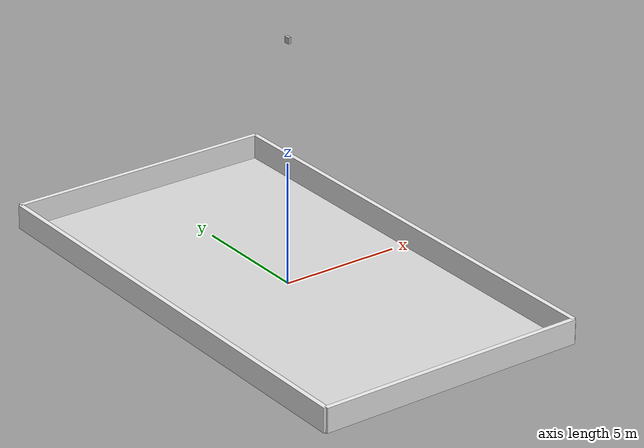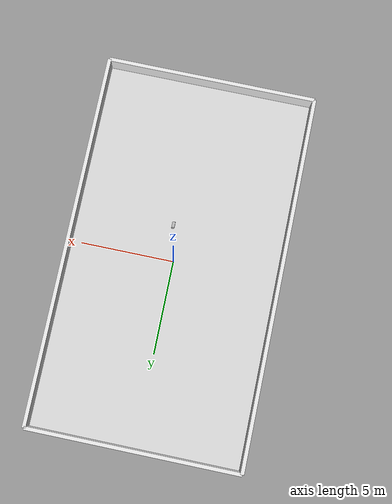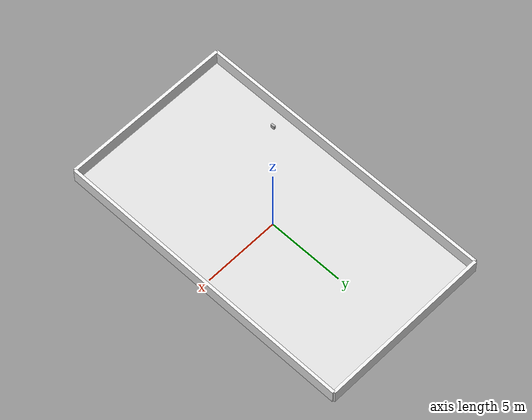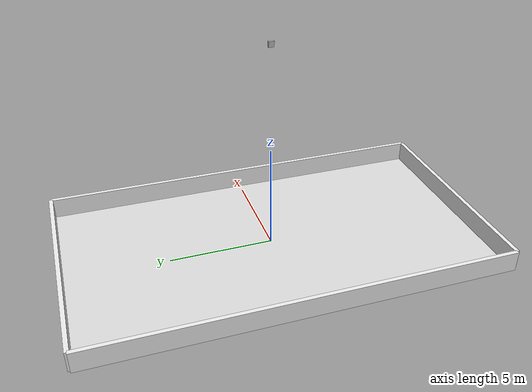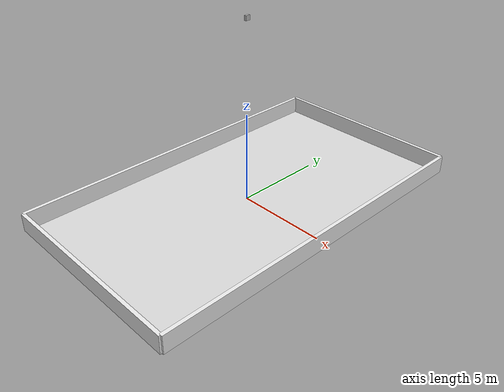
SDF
<sdf version="1.8">
 <world name="default">
  <physics type="ode">
   <real_time_update_rate>1000.0</real_time_update_rate>
   <max_step_size>0.001</max_step_size>
   <real_time_factor>1.0</real_time_factor>
   <ode>
    <solver>
     <type>quick</type>
     <iters>150</iters>
     <precon_iters>0</precon_iters>
     <sor>1.4</sor>
     <use_dynamic_moi_rescaling>1</use_dynamic_moi_rescaling>
    </solver>
    <constraints>
     <cfm>0.00001</cfm>
     <erp>0.2</erp>
     <contact_max_correcting_vel>100.0</contact_max_correcting_vel>
     <contact_surface_layer>0.001</contact_surface_layer>
    </constraints>
   </ode>
  </physics>
  <plugin filename="gz-sim-physics-system" name="gz::sim::systems::Physics"/>
  <plugin filename="gz-sim-user-commands-system" name="gz::sim::systems::UserCommands"/>
  <plugin filename="gz-sim-scene-broadcaster-system" name="gz::sim::systems::SceneBroadcaster"/>
  <plugin filename="gz-sim-sensors-system" name="gz::sim::systems::Sensors">
   <render_engine>ogre2</render_engine>
  </plugin>
  <plugin filename="gz-sim-imu-system" name="gz::sim::systems::Imu"/>
  <include><uri>https://fuel.gazebosim.org/1.0/OpenRobotics/models/Sun</uri></include>
  <include><uri>model://overhead_camera</uri></include>
  <include><uri>model://warehouse_world</uri></include>
 </world>
</sdf>

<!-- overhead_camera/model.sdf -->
<sdf version="1.8">
  <model name="overhead_camera">
    <static>true</static>
    <pose>0 0 10 0 1.57079632679 0</pose>

    <link name="camera_link">
      <sensor name="overhead_camera_sensor" type="camera">
        <always_on>true</always_on>
        <update_rate>30</update_rate>
        <visualize>true</visualize>

        <camera>
          <horizontal_fov>1.57</horizontal_fov>
          <image>
            <width>3840</width>
            <height>2160</height>
            <format>R8G8B8</format>
          </image>
          <clip>
            <near>0.1</near>
            <far>100</far>
          </clip>
        </camera>
      </sensor>

      <visual name="camera_box">
        <geometry>
          <box>
            <size>0.25 0.25 0.12</size>
          </box>
        </geometry>
      </visual>
    </link>
  </model>
</sdf>

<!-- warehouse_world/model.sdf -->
<sdf version="1.8">
  <model name="warehouse_world">
    <static>true</static>
    <pose>0 0 0 0 0 1.57079632679</pose>

    <link name="warehouse_link">

      <!-- FLOOR -->
      <collision name="floor_col">
        <pose>0 0 -0.025 0 0 0</pose>
        <geometry>
          <box>
            <size>20 11.25 0.05</size>
          </box>
        </geometry>
      </collision>

      <visual name="floor_vis">
        <pose>0 0 -0.025 0 0 0</pose>
        <geometry>
          <box>
            <size>20 11.25 0.05</size>
          </box>
        </geometry>
        <material>
          <ambient>0.80 0.80 0.80 1</ambient>
          <diffuse>0.85 0.85 0.85 1</diffuse>
          <specular>0.10 0.10 0.10 1</specular>
        </material>
      </visual>

      <!-- NORTH WALL -->
      <collision name="wall_north">
        <pose>0 5.625 0.5 0 0 0</pose>
        <geometry>
          <box>
            <size>20 0.2 1</size>
          </box>
        </geometry>
      </collision>

      <visual name="wall_north_vis">
        <pose>0 5.625 0.5 0 0 0</pose>
        <geometry>
          <box>
            <size>20 0.2 1</size>
          </box>
        </geometry>
        <material>
          <ambient>0.86 0.86 0.86 1</ambient>
          <diffuse>0.92 0.92 0.92 1</diffuse>
          <specular>0.05 0.05 0.05 1</specular>
        </material>
      </visual>

      <!-- SOUTH WALL -->
      <collision name="wall_south">
        <pose>0 -5.625 0.5 0 0 0</pose>
        <geometry>
          <box>
            <size>20 0.2 1</size>
          </box>
        </geometry>
      </collision>

      <visual name="wall_south_vis">
        <pose>0 -5.625 0.5 0 0 0</pose>
        <geometry>
          <box>
            <size>20 0.2 1</size>
          </box>
        </geometry>
        <material>
          <ambient>0.86 0.86 0.86 1</ambient>
          <diffuse>0.92 0.92 0.92 1</diffuse>
          <specular>0.05 0.05 0.05 1</specular>
        </material>
      </visual>

      <!-- WEST WALL -->
      <collision name="wall_west">
        <pose>-10 0 0.5 0 0 0</pose>
        <geometry>
          <box>
            <size>0.2 11.25 1</size>
          </box>
        </geometry>
      </collision>

      <visual name="wall_west_vis">
        <pose>-10 0 0.5 0 0 0</pose>
        <geometry>
          <box>
            <size>0.2 11.25 1</size>
          </box>
        </geometry>
        <material>
          <ambient>0.86 0.86 0.86 1</ambient>
          <diffuse>0.92 0.92 0.92 1</diffuse>
          <specular>0.05 0.05 0.05 1</specular>
        </material>
      </visual>

      <!-- EAST WALL -->
      <collision name="wall_east">
        <pose>10 0 0.5 0 0 0</pose>
        <geometry>
          <box>
            <size>0.2 11.25 1</size>
          </box>
        </geometry>
      </collision>

      <visual name="wall_east_vis">
        <pose>10 0 0.5 0 0 0</pose>
        <geometry>
          <box>
            <size>0.2 11.25 1</size>
          </box>
        </geometry>
        <material>
          <ambient>0.86 0.86 0.86 1</ambient>
          <diffuse>0.92 0.92 0.92 1</diffuse>
          <specular>0.05 0.05 0.05 1</specular>
        </material>
      </visual>

    </link>
  </model>
</sdf>
